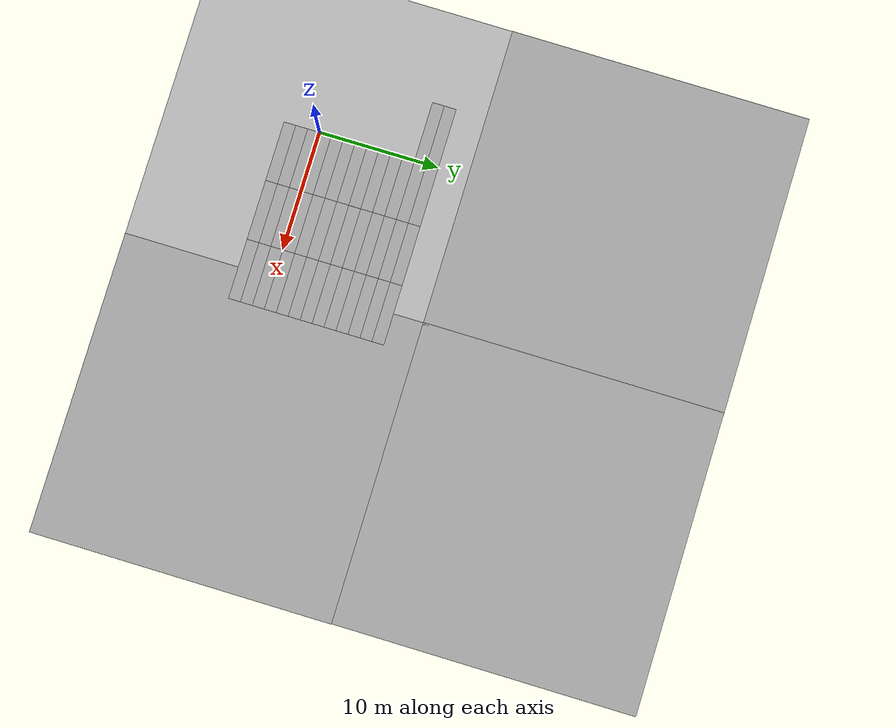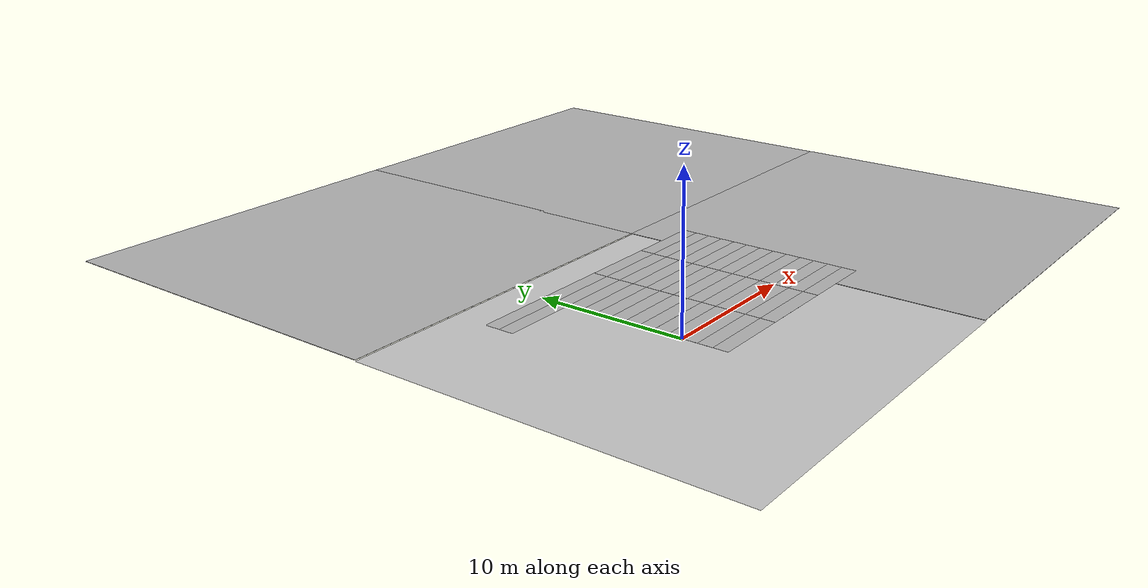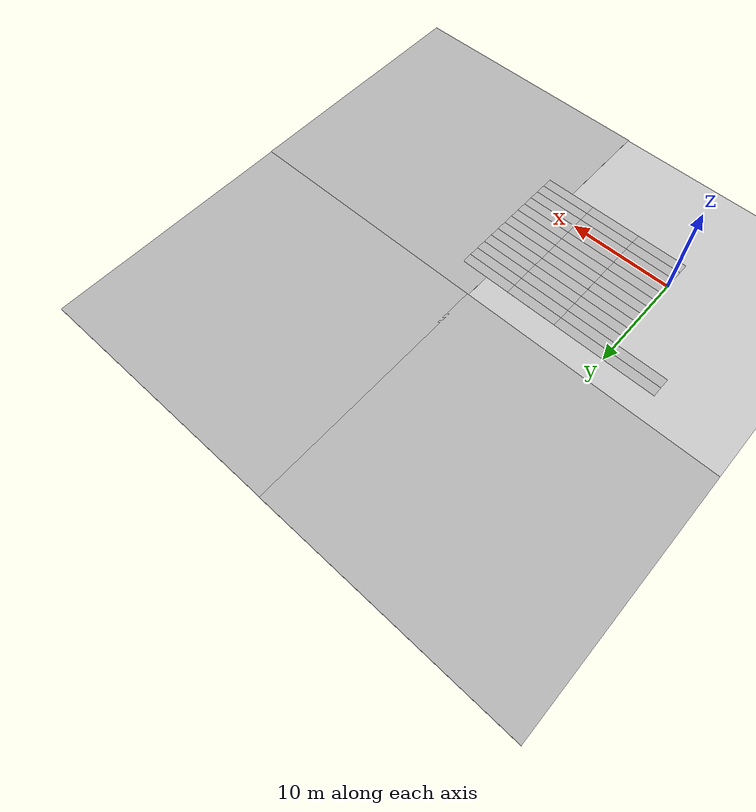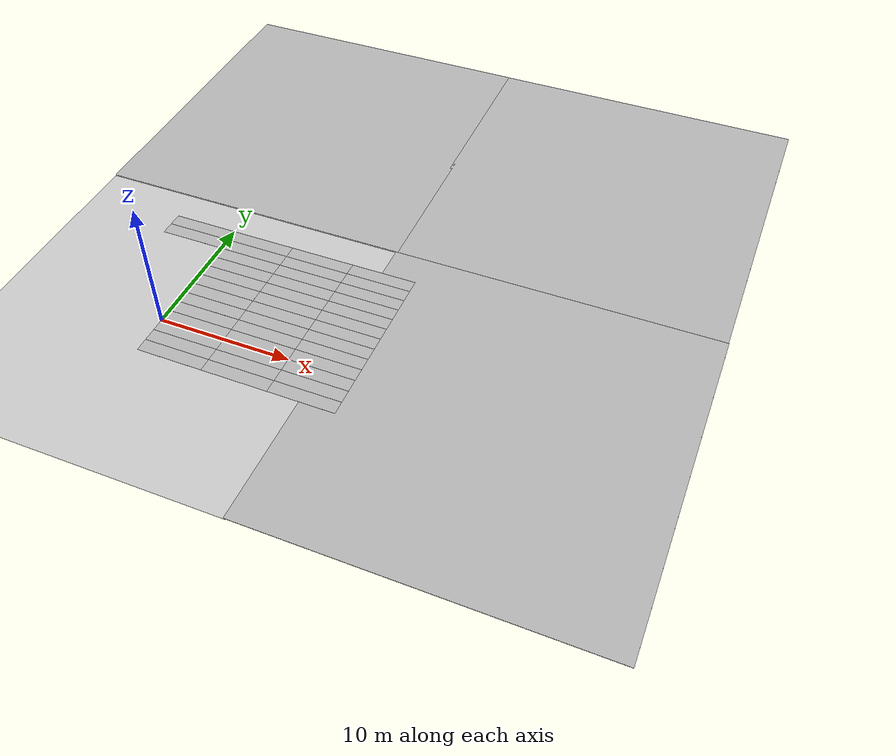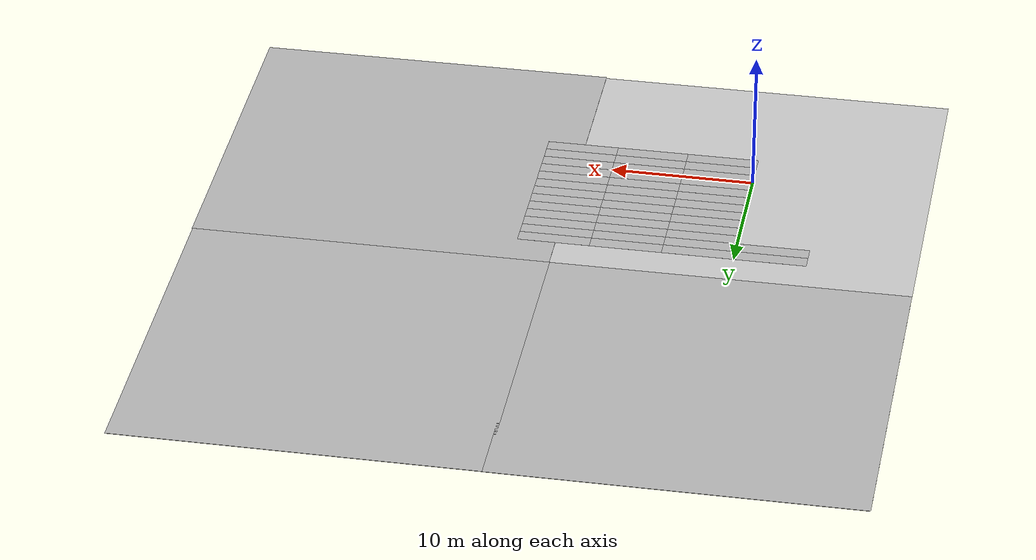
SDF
<sdf version="1.6">
 <world name="default">
  <model name="cmp9767m_ground_3">
   <static>1</static>
   <link name="dirt">
    <collision name="collision">
     <geometry><plane><normal>0 0 1</normal><size>25 25</size></plane></geometry>
     <surface><friction><ode><mu>100</mu><mu2>50</mu2></ode></friction></surface>
    </collision>
    <visual name="visual">
     <cast_shadows>0</cast_shadows>
     <geometry><plane><normal>0 0 1</normal><size>25 25</size></plane></geometry>
     <material>
      <script>
       <uri>model://cmp9767m_ground_3/materials/scripts</uri>
       <uri>model://cmp9767m_ground_3/materials/textures</uri>
       <name>cmp9767m_ground_3/dirt</name>
      </script>
     </material>
    </visual>
   </link>
  </model>
  <model name="cmp9767m_ground_3_0">
   <static>1</static>
   <link name="dirt">
    <collision name="collision">
     <geometry><plane><normal>0 0 1</normal><size>25 25</size></plane></geometry>
     <surface><friction><ode><mu>100</mu><mu2>50</mu2></ode></friction></surface>
    </collision>
    <visual name="visual">
     <cast_shadows>0</cast_shadows>
     <geometry><plane><normal>0 0 1</normal><size>25 25</size></plane></geometry>
     <material>
      <script>
       <uri>model://cmp9767m_ground_3/materials/scripts</uri>
       <uri>model://cmp9767m_ground_3/materials/textures</uri>
       <name>cmp9767m_ground_3/dirt</name>
      </script>
     </material>
    </visual>
   </link>
   <pose>0 25 0 0 -0 0</pose>
  </model>
  <model name="cmp9767m_ground_3_6">
   <static>1</static>
   <link name="dirt">
    <collision name="collision">
     <geometry><plane><normal>0 0 1</normal><size>25 25</size></plane></geometry>
     <surface><friction><ode><mu>100</mu><mu2>50</mu2></ode></friction></surface>
    </collision>
    <visual name="visual">
     <cast_shadows>0</cast_shadows>
     <geometry><plane><normal>0 0 1</normal><size>25 25</size></plane></geometry>
     <material>
      <script>
       <uri>model://cmp9767m_ground_3/materials/scripts</uri>
       <uri>model://cmp9767m_ground_3/materials/textures</uri>
       <name>cmp9767m_ground_3/dirt</name>
      </script>
     </material>
    </visual>
   </link>
   <pose>24.8613 0.003309 0 0 -0 0</pose>
  </model>
  <model name="cmp9767m_ground_3_7">
   <static>1</static>
   <link name="dirt">
    <collision name="collision">
     <geometry><plane><normal>0 0 1</normal><size>25 25</size></plane></geometry>
     <surface><friction><ode><mu>100</mu><mu2>50</mu2></ode></friction></surface>
    </collision>
    <visual name="visual">
     <cast_shadows>0</cast_shadows>
     <geometry><plane><normal>0 0 1</normal><size>25 25</size></plane></geometry>
     <material>
      <script>
       <uri>model://cmp9767m_ground_3/materials/scripts</uri>
       <uri>model://cmp9767m_ground_3/materials/textures</uri>
       <name>cmp9767m_ground_3/dirt</name>
      </script>
     </material>
    </visual>
   </link>
   <pose>24.8226 24.9841 0 0 -0 0</pose>
  </model>
  <model name="crop_rows_0">
   <static>1</static>
   <link name="crop_rows">
    <pose>0 0 0.025 0 -0 0</pose>
    <collision name="collision">
     <geometry><plane><normal>0 0 1</normal><size>5 1</size></plane></geometry>
     <surface><friction><ode><mu>100</mu><mu2>50</mu2></ode></friction></surface>
    </collision>
    <visual name="visual">
     <cast_shadows>0</cast_shadows>
     <geometry><plane><normal>0 0 1</normal><size>5 1</size></plane></geometry>
     <material>
      <script>
       <uri>model://crop_rows/materials/scripts</uri>
       <uri>model://crop_rows/materials/textures</uri>
       <name>crop_rows/real_texture</name>
      </script>
     </material>
    </visual>
   </link>
   <pose>2.5 -0.5 0 0 -0 0</pose>
  </model>
  <model name="crop_rows_2">
   <static>1</static>
   <link name="crop_rows">
    <pose>0 0 0.025 0 -0 0</pose>
    <collision name="collision">
     <geometry><plane><normal>0 0 1</normal><size>5 1</size></plane></geometry>
     <surface><friction><ode><mu>100</mu><mu2>50</mu2></ode></friction></surface>
    </collision>
    <visual name="visual">
     <cast_shadows>0</cast_shadows>
     <geometry><plane><normal>0 0 1</normal><size>5 1</size></plane></geometry>
     <material>
      <script>
       <uri>model://crop_rows/materials/scripts</uri>
       <uri>model://crop_rows/materials/textures</uri>
       <name>crop_rows/real_texture</name>
      </script>
     </material>
    </visual>
   </link>
   <pose>2.5 -1.5 0 0 -0 0</pose>
  </model>
  <model name="crop_rows_4">
   <static>1</static>
   <link name="crop_rows">
    <pose>0 0 0.025 0 -0 0</pose>
    <collision name="collision">
     <geometry><plane><normal>0 0 1</normal><size>5 1</size></plane></geometry>
     <surface><friction><ode><mu>100</mu><mu2>50</mu2></ode></friction></surface>
    </collision>
    <visual name="visual">
     <cast_shadows>0</cast_shadows>
     <geometry><plane><normal>0 0 1</normal><size>5 1</size></plane></geometry>
     <material>
      <script>
       <uri>model://crop_rows/materials/scripts</uri>
       <uri>model://crop_rows/materials/textures</uri>
       <name>crop_rows/real_texture</name>
      </script>
     </material>
    </visual>
   </link>
   <pose>2.5 -2.5 0 0 -0 0</pose>
  </model>
  <model name="crop_rows_11">
   <static>1</static>
   <link name="crop_rows">
    <pose>0 0 0.025 0 -0 0</pose>
    <collision name="collision">
     <geometry><plane><normal>0 0 1</normal><size>5 1</size></plane></geometry>
     <surface><friction><ode><mu>100</mu><mu2>50</mu2></ode></friction></surface>
    </collision>
    <visual name="visual">
     <cast_shadows>0</cast_shadows>
     <geometry><plane><normal>0 0 1</normal><size>5 1</size></plane></geometry>
     <material>
      <script>
       <uri>model://crop_rows/materials/scripts</uri>
       <uri>model://crop_rows/materials/textures</uri>
       <name>crop_rows/real_texture</name>
      </script>
     </material>
    </visual>
   </link>
   <pose>2.5 0.5 0 0 -0 0</pose>
  </model>
  <model name="crop_rows_12">
   <static>1</static>
   <link name="crop_rows">
    <pose>0 0 0.025 0 -0 0</pose>
    <collision name="collision">
     <geometry><plane><normal>0 0 1</normal><size>5 1</size></plane></geometry>
     <surface><friction><ode><mu>100</mu><mu2>50</mu2></ode></friction></surface>
    </collision>
    <visual name="visual">
     <cast_shadows>0</cast_shadows>
     <geometry><plane><normal>0 0 1</normal><size>5 1</size></plane></geometry>
     <material>
      <script>
       <uri>model://crop_rows/materials/scripts</uri>
       <uri>model://crop_rows/materials/textures</uri>
       <name>crop_rows/real_texture</name>
      </script>
     </material>
    </visual>
   </link>
   <pose>2.5 1.5 0 0 -0 0</pose>
  </model>
  <model name="crop_rows_13">
   <static>1</static>
   <link name="crop_rows">
    <pose>0 0 0.025 0 -0 0</pose>
    <collision name="collision">
     <geometry><plane><normal>0 0 1</normal><size>5 1</size></plane></geometry>
     <surface><friction><ode><mu>100</mu><mu2>50</mu2></ode></friction></surface>
    </collision>
    <visual name="visual">
     <cast_shadows>0</cast_shadows>
     <geometry><plane><normal>0 0 1</normal><size>5 1</size></plane></geometry>
     <material>
      <script>
       <uri>model://crop_rows/materials/scripts</uri>
       <uri>model://crop_rows/materials/textures</uri>
       <name>crop_rows/real_texture</name>
      </script>
     </material>
    </visual>
   </link>
   <pose>2.50339 2.50065 0 0 -0 0</pose>
  </model>
  <model name="crop_rows_14">
   <static>1</static>
   <link name="crop_rows">
    <pose>0 0 0.025 0 -0 0</pose>
    <collision name="collision">
     <geometry><plane><normal>0 0 1</normal><size>5 1</size></plane></geometry>
     <surface><friction><ode><mu>100</mu><mu2>50</mu2></ode></friction></surface>
    </collision>
    <visual name="visual">
     <cast_shadows>0</cast_shadows>
     <geometry><plane><normal>0 0 1</normal><size>5 1</size></plane></geometry>
     <material>
      <script>
       <uri>model://crop_rows/materials/scripts</uri>
       <uri>model://crop_rows/materials/textures</uri>
       <name>crop_rows/real_texture</name>
      </script>
     </material>
    </visual>
   </link>
   <pose>2.5 3.5 0 0 -0 0</pose>
  </model>
  <model name="crop_rows_22">
   <static>1</static>
   <link name="crop_rows">
    <pose>0 0 0.025 0 -0 0</pose>
    <collision name="collision">
     <geometry><plane><normal>0 0 1</normal><size>5 1</size></plane></geometry>
     <surface><friction><ode><mu>100</mu><mu2>50</mu2></ode></friction></surface>
    </collision>
    <visual name="visual">
     <cast_shadows>0</cast_shadows>
     <geometry><plane><normal>0 0 1</normal><size>5 1</size></plane></geometry>
     <material>
      <script>
       <uri>model://crop_rows/materials/scripts</uri>
       <uri>model://crop_rows/materials/textures</uri>
       <name>crop_rows/real_texture</name>
      </script>
     </material>
    </visual>
   </link>
   <pose>7.5 -2.5 0 0 -0 0</pose>
  </model>
  <model name="crop_rows_23">
   <static>1</static>
   <link name="crop_rows">
    <pose>0 0 0.025 0 -0 0</pose>
    <collision name="collision">
     <geometry><plane><normal>0 0 1</normal><size>5 1</size></plane></geometry>
     <surface><friction><ode><mu>100</mu><mu2>50</mu2></ode></friction></surface>
    </collision>
    <visual name="visual">
     <cast_shadows>0</cast_shadows>
     <geometry><plane><normal>0 0 1</normal><size>5 1</size></plane></geometry>
     <material>
      <script>
       <uri>model://crop_rows/materials/scripts</uri>
       <uri>model://crop_rows/materials/textures</uri>
       <name>crop_rows/real_texture</name>
      </script>
     </material>
    </visual>
   </link>
   <pose>7.5 -1.5 0 0 -0 0</pose>
  </model>
  <model name="crop_rows_24">
   <static>1</static>
   <link name="crop_rows">
    <pose>0 0 0.025 0 -0 0</pose>
    <collision name="collision">
     <geometry><plane><normal>0 0 1</normal><size>5 1</size></plane></geometry>
     <surface><friction><ode><mu>100</mu><mu2>50</mu2></ode></friction></surface>
    </collision>
    <visual name="visual">
     <cast_shadows>0</cast_shadows>
     <geometry><plane><normal>0 0 1</normal><size>5 1</size></plane></geometry>
     <material>
      <script>
       <uri>model://crop_rows/materials/scripts</uri>
       <uri>model://crop_rows/materials/textures</uri>
       <name>crop_rows/real_texture</name>
      </script>
     </material>
    </visual>
   </link>
   <pose>7.5 -0.5 0 0 -0 0</pose>
  </model>
  <model name="crop_rows_25">
   <static>1</static>
   <link name="crop_rows">
    <pose>0 0 0.025 0 -0 0</pose>
    <collision name="collision">
     <geometry><plane><normal>0 0 1</normal><size>5 1</size></plane></geometry>
     <surface><friction><ode><mu>100</mu><mu2>50</mu2></ode></friction></surface>
    </collision>
    <visual name="visual">
     <cast_shadows>0</cast_shadows>
     <geometry><plane><normal>0 0 1</normal><size>5 1</size></plane></geometry>
     <material>
      <script>
       <uri>model://crop_rows/materials/scripts</uri>
       <uri>model://crop_rows/materials/textures</uri>
       <name>crop_rows/real_texture</name>
      </script>
     </material>
    </visual>
   </link>
   <pose>7.5 0.5 0 0 -0 0</pose>
  </model>
  <model name="crop_rows_26">
   <static>1</static>
   <link name="crop_rows">
    <pose>0 0 0.025 0 -0 0</pose>
    <collision name="collision">
     <geometry><plane><normal>0 0 1</normal><size>5 1</size></plane></geometry>
     <surface><friction><ode><mu>100</mu><mu2>50</mu2></ode></friction></surface>
    </collision>
    <visual name="visual">
     <cast_shadows>0</cast_shadows>
     <geometry><plane><normal>0 0 1</normal><size>5 1</size></plane></geometry>
     <material>
      <script>
       <uri>model://crop_rows/materials/scripts</uri>
       <uri>model://crop_rows/materials/textures</uri>
       <name>crop_rows/real_texture</name>
      </script>
     </material>
    </visual>
   </link>
   <pose>7.5 1.5 0 0 -0 0</pose>
  </model>
  <model name="crop_rows_27">
   <static>1</static>
   <link name="crop_rows">
    <pose>0 0 0.025 0 -0 0</pose>
    <collision name="collision">
     <geometry><plane><normal>0 0 1</normal><size>5 1</size></plane></geometry>
     <surface><friction><ode><mu>100</mu><mu2>50</mu2></ode></friction></surface>
    </collision>
    <visual name="visual">
     <cast_shadows>0</cast_shadows>
     <geometry><plane><normal>0 0 1</normal><size>5 1</size></plane></geometry>
     <material>
      <script>
       <uri>model://crop_rows/materials/scripts</uri>
       <uri>model://crop_rows/materials/textures</uri>
       <name>crop_rows/real_texture</name>
      </script>
     </material>
    </visual>
   </link>
   <pose>7.5 2.5 0 0 -0 0</pose>
  </model>
  <model name="crop_rows_28">
   <static>1</static>
   <link name="crop_rows">
    <pose>0 0 0.025 0 -0 0</pose>
    <collision name="collision">
     <geometry><plane><normal>0 0 1</normal><size>5 1</size></plane></geometry>
     <surface><friction><ode><mu>100</mu><mu2>50</mu2></ode></friction></surface>
    </collision>
    <visual name="visual">
     <cast_shadows>0</cast_shadows>
     <geometry><plane><normal>0 0 1</normal><size>5 1</size></plane></geometry>
     <material>
      <script>
       <uri>model://crop_rows/materials/scripts</uri>
       <uri>model://crop_rows/materials/textures</uri>
       <name>crop_rows/real_texture</name>
      </script>
     </material>
    </visual>
   </link>
   <pose>7.5 3.5 0 0 -0 0</pose>
  </model>
  <model name="crop_rows_30">
   <static>1</static>
   <link name="crop_rows">
    <pose>0 0 0.025 0 -0 0</pose>
    <collision name="collision">
     <geometry><plane><normal>0 0 1</normal><size>5 1</size></plane></geometry>
     <surface><friction><ode><mu>100</mu><mu2>50</mu2></ode></friction></surface>
    </collision>
    <visual name="visual">
     <cast_shadows>0</cast_shadows>
     <geometry><plane><normal>0 0 1</normal><size>5 1</size></plane></geometry>
     <material>
      <script>
       <uri>model://crop_rows/materials/scripts</uri>
       <uri>model://crop_rows/materials/textures</uri>
       <name>crop_rows/real_texture</name>
      </script>
     </material>
    </visual>
   </link>
   <pose>2.5 4.5 0 0 -0 0</pose>
  </model>
  <model name="crop_rows_31">
   <static>1</static>
   <link name="crop_rows">
    <pose>0 0 0.025 0 -0 0</pose>
    <collision name="collision">
     <geometry><plane><normal>0 0 1</normal><size>5 1</size></plane></geometry>
     <surface><friction><ode><mu>100</mu><mu2>50</mu2></ode></friction></surface>
    </collision>
    <visual name="visual">
     <cast_shadows>0</cast_shadows>
     <geometry><plane><normal>0 0 1</normal><size>5 1</size></plane></geometry>
     <material>
      <script>
       <uri>model://crop_rows/materials/scripts</uri>
       <uri>model://crop_rows/materials/textures</uri>
       <name>crop_rows/real_texture</name>
      </script>
     </material>
    </visual>
   </link>
   <pose>7.50726 4.5 0 0 -0 0</pose>
  </model>
  <model name="crop_rows_33">
   <static>1</static>
   <link name="crop_rows">
    <pose>0 0 0.025 0 -0 0</pose>
    <collision name="collision">
     <geometry><plane><normal>0 0 1</normal><size>5 1</size></plane></geometry>
     <surface><friction><ode><mu>100</mu><mu2>50</mu2></ode></friction></surface>
    </collision>
    <visual name="visual">
     <cast_shadows>0</cast_shadows>
     <geometry><plane><normal>0 0 1</normal><size>5 1</size></plane></geometry>
     <material>
      <script>
       <uri>model://crop_rows/materials/scripts</uri>
       <uri>model://crop_rows/materials/textures</uri>
       <name>crop_rows/real_texture</name>
      </script>
     </material>
    </visual>
   </link>
   <pose>2.5 5.5 0 0 -0 0</pose>
  </model>
  <model name="crop_rows_34">
   <static>1</static>
   <link name="crop_rows">
    <pose>0 0 0.025 0 -0 0</pose>
    <collision name="collision">
     <geometry><plane><normal>0 0 1</normal><size>5 1</size></plane></geometry>
     <surface><friction><ode><mu>100</mu><mu2>50</mu2></ode></friction></surface>
    </collision>
    <visual name="visual">
     <cast_shadows>0</cast_shadows>
     <geometry><plane><normal>0 0 1</normal><size>5 1</size></plane></geometry>
     <material>
      <script>
       <uri>model://crop_rows/materials/scripts</uri>
       <uri>model://crop_rows/materials/textures</uri>
       <name>crop_rows/real_texture</name>
      </script>
     </material>
    </visual>
   </link>
   <pose>7.5 5.5 0 0 -0 0</pose>
  </model>
  <model name="crop_rows_36">
   <static>1</static>
   <link name="crop_rows">
    <pose>0 0 0.025 0 -0 0</pose>
    <collision name="collision">
     <geometry><plane><normal>0 0 1</normal><size>5 1</size></plane></geometry>
     <surface><friction><ode><mu>100</mu><mu2>50</mu2></ode></friction></surface>
    </collision>
    <visual name="visual">
     <cast_shadows>0</cast_shadows>
     <geometry><plane><normal>0 0 1</normal><size>5 1</size></plane></geometry>
     <material>
      <script>
       <uri>model://crop_rows/materials/scripts</uri>
       <uri>model://crop_rows/materials/textures</uri>
       <name>crop_rows/real_texture</name>
      </script>
     </material>
    </visual>
   </link>
   <pose>2.5 6.5 0 0 -0 0</pose>
  </model>
  <model name="crop_rows_37">
   <static>1</static>
   <link name="crop_rows">
    <pose>0 0 0.025 0 -0 0</pose>
    <collision name="collision">
     <geometry><plane><normal>0 0 1</normal><size>5 1</size></plane></geometry>
     <surface><friction><ode><mu>100</mu><mu2>50</mu2></ode></friction></surface>
    </collision>
    <visual name="visual">
     <cast_shadows>0</cast_shadows>
     <geometry><plane><normal>0 0 1</normal><size>5 1</size></plane></geometry>
     <material>
      <script>
       <uri>model://crop_rows/materials/scripts</uri>
       <uri>model://crop_rows/materials/textures</uri>
       <name>crop_rows/real_texture</name>
      </script>
     </material>
    </visual>
   </link>
   <pose>7.5 6.5 0 0 -0 0</pose>
  </model>
  <model name="crop_rows_42">
   <static>1</static>
   <link name="crop_rows">
    <pose>0 0 0.025 0 -0 0</pose>
    <collision name="collision">
     <geometry><plane><normal>0 0 1</normal><size>5 1</size></plane></geometry>
     <surface><friction><ode><mu>100</mu><mu2>50</mu2></ode></friction></surface>
    </collision>
    <visual name="visual">
     <cast_shadows>0</cast_shadows>
     <geometry><plane><normal>0 0 1</normal><size>5 1</size></plane></geometry>
     <material>
      <script>
       <uri>model://crop_rows/materials/scripts</uri>
       <uri>model://crop_rows/materials/textures</uri>
       <name>crop_rows/real_texture</name>
      </script>
     </material>
    </visual>
   </link>
   <pose>2.5 7.5 0 0 -0 0</pose>
  </model>
  <model name="crop_rows_43">
   <static>1</static>
   <link name="crop_rows">
    <pose>0 0 0.025 0 -0 0</pose>
    <collision name="collision">
     <geometry><plane><normal>0 0 1</normal><size>5 1</size></plane></geometry>
     <surface><friction><ode><mu>100</mu><mu2>50</mu2></ode></friction></surface>
    </collision>
    <visual name="visual">
     <cast_shadows>0</cast_shadows>
     <geometry><plane><normal>0 0 1</normal><size>5 1</size></plane></geometry>
     <material>
      <script>
       <uri>model://crop_rows/materials/scripts</uri>
       <uri>model://crop_rows/materials/textures</uri>
       <name>crop_rows/real_texture</name>
      </script>
     </material>
    </visual>
   </link>
   <pose>7.5 7.5 0 0 -0 0</pose>
  </model>
  <model name="crop_rows_52">
   <static>1</static>
   <link name="crop_rows">
    <pose>0 0 0.025 0 -0 0</pose>
    <collision name="collision">
     <geometry><plane><normal>0 0 1</normal><size>5 1</size></plane></geometry>
     <surface><friction><ode><mu>100</mu><mu2>50</mu2></ode></friction></surface>
    </collision>
    <visual name="visual">
     <cast_shadows>0</cast_shadows>
     <geometry><plane><normal>0 0 1</normal><size>5 1</size></plane></geometry>
     <material>
      <script>
       <uri>model://crop_rows/materials/scripts</uri>
       <uri>model://crop_rows/materials/textures</uri>
       <name>crop_rows/real_texture</name>
      </script>
     </material>
    </visual>
   </link>
   <pose>12.5 -2.5 0 0 -0 0</pose>
  </model>
  <model name="crop_rows_53">
   <static>1</static>
   <link name="crop_rows">
    <pose>0 0 0.025 0 -0 0</pose>
    <collision name="collision">
     <geometry><plane><normal>0 0 1</normal><size>5 1</size></plane></geometry>
     <surface><friction><ode><mu>100</mu><mu2>50</mu2></ode></friction></surface>
    </collision>
    <visual name="visual">
     <cast_shadows>0</cast_shadows>
     <geometry><plane><normal>0 0 1</normal><size>5 1</size></plane></geometry>
     <material>
      <script>
       <uri>model://crop_rows/materials/scripts</uri>
       <uri>model://crop_rows/materials/textures</uri>
       <name>crop_rows/real_texture</name>
      </script>
     </material>
    </visual>
   </link>
   <pose>12.5 -1.5 0 0 -0 0</pose>
  </model>
  <model name="crop_rows_54">
   <static>1</static>
   <link name="crop_rows">
    <pose>0 0 0.025 0 -0 0</pose>
    <collision name="collision">
     <geometry><plane><normal>0 0 1</normal><size>5 1</size></plane></geometry>
     <surface><friction><ode><mu>100</mu><mu2>50</mu2></ode></friction></surface>
    </collision>
    <visual name="visual">
     <cast_shadows>0</cast_shadows>
     <geometry><plane><normal>0 0 1</normal><size>5 1</size></plane></geometry>
     <material>
      <script>
       <uri>model://crop_rows/materials/scripts</uri>
       <uri>model://crop_rows/materials/textures</uri>
       <name>crop_rows/real_texture</name>
      </script>
     </material>
    </visual>
   </link>
   <pose>12.5 -0.5 0 0 -0 0</pose>
  </model>
  <model name="crop_rows_55">
   <static>1</static>
   <link name="crop_rows">
    <pose>0 0 0.025 0 -0 0</pose>
    <collision name="collision">
     <geometry><plane><normal>0 0 1</normal><size>5 1</size></plane></geometry>
     <surface><friction><ode><mu>100</mu><mu2>50</mu2></ode></friction></surface>
    </collision>
    <visual name="visual">
     <cast_shadows>0</cast_shadows>
     <geometry><plane><normal>0 0 1</normal><size>5 1</size></plane></geometry>
     <material>
      <script>
       <uri>model://crop_rows/materials/scripts</uri>
       <uri>model://crop_rows/materials/textures</uri>
       <name>crop_rows/real_texture</name>
      </script>
     </material>
    </visual>
   </link>
   <pose>12.5 0.5 0 0 -0 0</pose>
  </model>
  <model name="crop_rows_56">
   <static>1</static>
   <link name="crop_rows">
    <pose>0 0 0.025 0 -0 0</pose>
    <collision name="collision">
     <geometry><plane><normal>0 0 1</normal><size>5 1</size></plane></geometry>
     <surface><friction><ode><mu>100</mu><mu2>50</mu2></ode></friction></surface>
    </collision>
    <visual name="visual">
     <cast_shadows>0</cast_shadows>
     <geometry><plane><normal>0 0 1</normal><size>5 1</size></plane></geometry>
     <material>
      <script>
       <uri>model://crop_rows/materials/scripts</uri>
       <uri>model://crop_rows/materials/textures</uri>
       <name>crop_rows/real_texture</name>
      </script>
     </material>
    </visual>
   </link>
   <pose>12.5 1.5 0 0 -0 0</pose>
  </model>
  <model name="crop_rows_57">
   <static>1</static>
   <link name="crop_rows">
    <pose>0 0 0.025 0 -0 0</pose>
    <collision name="collision">
     <geometry><plane><normal>0 0 1</normal><size>5 1</size></plane></geometry>
     <surface><friction><ode><mu>100</mu><mu2>50</mu2></ode></friction></surface>
    </collision>
    <visual name="visual">
     <cast_shadows>0</cast_shadows>
     <geometry><plane><normal>0 0 1</normal><size>5 1</size></plane></geometry>
     <material>
      <script>
       <uri>model://crop_rows/materials/scripts</uri>
       <uri>model://crop_rows/materials/textures</uri>
       <name>crop_rows/real_texture</name>
      </script>
     </material>
    </visual>
   </link>
   <pose>12.5 2.5 0 0 -0 0</pose>
  </model>
  <model name="crop_rows_58">
   <static>1</static>
   <link name="crop_rows">
    <pose>0 0 0.025 0 -0 0</pose>
    <collision name="collision">
     <geometry><plane><normal>0 0 1</normal><size>5 1</size></plane></geometry>
     <surface><friction><ode><mu>100</mu><mu2>50</mu2></ode></friction></surface>
    </collision>
    <visual name="visual">
     <cast_shadows>0</cast_shadows>
     <geometry><plane><normal>0 0 1</normal><size>5 1</size></plane></geometry>
     <material>
      <script>
       <uri>model://crop_rows/materials/scripts</uri>
       <uri>model://crop_rows/materials/textures</uri>
       <name>crop_rows/real_texture</name>
      </script>
     </material>
    </visual>
   </link>
   <pose>12.5 3.5 0 0 -0 0</pose>
  </model>
  <model name="crop_rows_59">
   <static>1</static>
   <link name="crop_rows">
    <pose>0 0 0.025 0 -0 0</pose>
    <collision name="collision">
     <geometry><plane><normal>0 0 1</normal><size>5 1</size></plane></geometry>
     <surface><friction><ode><mu>100</mu><mu2>50</mu2></ode></friction></surface>
    </collision>
    <visual name="visual">
     <cast_shadows>0</cast_shadows>
     <geometry><plane><normal>0 0 1</normal><size>5 1</size></plane></geometry>
     <material>
      <script>
       <uri>model://crop_rows/materials/scripts</uri>
       <uri>model://crop_rows/materials/textures</uri>
       <name>crop_rows/real_texture</name>
      </script>
     </material>
    </visual>
   </link>
   <pose>12.5 4.5 0 0 -0 0</pose>
  </model>
  <model name="crop_rows_60">
   <static>1</static>
   <link name="crop_rows">
    <pose>0 0 0.025 0 -0 0</pose>
    <collision name="collision">
     <geometry><plane><normal>0 0 1</normal><size>5 1</size></plane></geometry>
     <surface><friction><ode><mu>100</mu><mu2>50</mu2></ode></friction></surface>
    </collision>
    <visual name="visual">
     <cast_shadows>0</cast_shadows>
     <geometry><plane><normal>0 0 1</normal><size>5 1</size></plane></geometry>
     <material>
      <script>
       <uri>model://crop_rows/materials/scripts</uri>
       <uri>model://crop_rows/materials/textures</uri>
       <name>crop_rows/real_texture</name>
      </script>
     </material>
    </visual>
   </link>
   <pose>12.5 5.5 0 0 -0 0</pose>
  </model>
  <model name="crop_rows_61">
   <static>1</static>
   <link name="crop_rows">
    <pose>0 0 0.025 0 -0 0</pose>
    <collision name="collision">
     <geometry><plane><normal>0 0 1</normal><size>5 1</size></plane></geometry>
     <surface><friction><ode><mu>100</mu><mu2>50</mu2></ode></friction></surface>
    </collision>
    <visual name="visual">
     <cast_shadows>0</cast_shadows>
     <geometry><plane><normal>0 0 1</normal><size>5 1</size></plane></geometry>
     <material>
      <script>
       <uri>model://crop_rows/materials/scripts</uri>
       <uri>model://crop_rows/materials/textures</uri>
       <name>crop_rows/real_texture</name>
      </script>
     </material>
    </visual>
   </link>
   <pose>12.5 6.5 0 0 -0 0</pose>
  </model>
  <model name="crop_rows_62">
   <static>1</static>
   <link name="crop_rows">
    <pose>0 0 0.025 0 -0 0</pose>
    <collision name="collision">
     <geometry><plane><normal>0 0 1</normal><size>5 1</size></plane></geometry>
     <surface><friction><ode><mu>100</mu><mu2>50</mu2></ode></friction></surface>
    </collision>
    <visual name="visual">
     <cast_shadows>0</cast_shadows>
     <geometry><plane><normal>0 0 1</normal><size>5 1</size></plane></geometry>
     <material>
      <script>
       <uri>model://crop_rows/materials/scripts</uri>
       <uri>model://crop_rows/materials/textures</uri>
       <name>crop_rows/real_texture</name>
      </script>
     </material>
    </visual>
   </link>
   <pose>12.5 7.5 0 0 -0 0</pose>
  </model>
  <model name="crop_rows_89">
   <static>1</static>
   <link name="crop_rows">
    <pose>0 0 0.025 0 -0 0</pose>
    <collision name="collision">
     <geometry><plane><normal>0 0 1</normal><size>5 1</size></plane></geometry>
     <surface><friction><ode><mu>100</mu><mu2>50</mu2></ode></friction></surface>
    </collision>
    <visual name="visual">
     <cast_shadows>0</cast_shadows>
     <geometry><plane><normal>0 0 1</normal><size>5 1</size></plane></geometry>
     <material>
      <script>
       <uri>model://crop_rows/materials/scripts</uri>
       <uri>model://crop_rows/materials/textures</uri>
       <name>crop_rows/real_texture</name>
      </script>
     </material>
    </visual>
   </link>
   <pose>12.5 8.5 0 0 -0 0</pose>
  </model>
  <model name="crop_rows_90">
   <static>1</static>
   <link name="crop_rows">
    <pose>0 0 0.025 0 -0 0</pose>
    <collision name="collision">
     <geometry><plane><normal>0 0 1</normal><size>5 1</size></plane></geometry>
     <surface><friction><ode><mu>100</mu><mu2>50</mu2></ode></friction></surface>
    </collision>
    <visual name="visual">
     <cast_shadows>0</cast_shadows>
     <geometry><plane><normal>0 0 1</normal><size>5 1</size></plane></geometry>
     <material>
      <script>
       <uri>model://crop_rows/materials/scripts</uri>
       <uri>model://crop_rows/materials/textures</uri>
       <name>crop_rows/real_texture</name>
      </script>
     </material>
    </visual>
   </link>
   <pose>7.5 8.5 0 0 -0 0</pose>
  </model>
  <model name="crop_rows_91">
   <static>1</static>
   <link name="crop_rows">
    <pose>0 0 0.025 0 -0 0</pose>
    <collision name="collision">
     <geometry><plane><normal>0 0 1</normal><size>5 1</size></plane></geometry>
     <surface><friction><ode><mu>100</mu><mu2>50</mu2></ode></friction></surface>
    </collision>
    <visual name="visual">
     <cast_shadows>0</cast_shadows>
     <geometry><plane><normal>0 0 1</normal><size>5 1</size></plane></geometry>
     <material>
      <script>
       <uri>model://crop_rows/materials/scripts</uri>
       <uri>model://crop_rows/materials/textures</uri>
       <name>crop_rows/real_texture</name>
      </script>
     </material>
    </visual>
   </link>
   <pose>2.5 8.5 0 0 -0 0</pose>
  </model>
  <model name="crop_rows_92">
   <static>1</static>
   <link name="crop_rows">
    <pose>0 0 0.025 0 -0 0</pose>
    <collision name="collision">
     <geometry><plane><normal>0 0 1</normal><size>5 1</size></plane></geometry>
     <surface><friction><ode><mu>100</mu><mu2>50</mu2></ode></friction></surface>
    </collision>
    <visual name="visual">
     <cast_shadows>0</cast_shadows>
     <geometry><plane><normal>0 0 1</normal><size>5 1</size></plane></geometry>
     <material>
      <script>
       <uri>model://crop_rows/materials/scripts</uri>
       <uri>model://crop_rows/materials/textures</uri>
       <name>crop_rows/real_texture</name>
      </script>
     </material>
    </visual>
   </link>
   <pose>-2.5 8.5 0 0 -0 0</pose>
  </model>
  <model name="crop_rows_95">
   <static>1</static>
   <link name="crop_rows">
    <pose>0 0 0.025 0 -0 0</pose>
    <collision name="collision">
     <geometry><plane><normal>0 0 1</normal><size>5 1</size></plane></geometry>
     <surface><friction><ode><mu>100</mu><mu2>50</mu2></ode></friction></surface>
    </collision>
    <visual name="visual">
     <cast_shadows>0</cast_shadows>
     <geometry><plane><normal>0 0 1</normal><size>5 1</size></plane></geometry>
     <material>
      <script>
       <uri>model://crop_rows/materials/scripts</uri>
       <uri>model://crop_rows/materials/textures</uri>
       <name>crop_rows/real_texture</name>
      </script>
     </material>
    </visual>
   </link>
   <pose>-2.5 9.5 0 0 -0 0</pose>
  </model>
  <model name="crop_rows_96">
   <static>1</static>
   <link name="crop_rows">
    <pose>0 0 0.025 0 -0 0</pose>
    <collision name="collision">
     <geometry><plane><normal>0 0 1</normal><size>5 1</size></plane></geometry>
     <surface><friction><ode><mu>100</mu><mu2>50</mu2></ode></friction></surface>
    </collision>
    <visual name="visual">
     <cast_shadows>0</cast_shadows>
     <geometry><plane><normal>0 0 1</normal><size>5 1</size></plane></geometry>
     <material>
      <script>
       <uri>model://crop_rows/materials/scripts</uri>
       <uri>model://crop_rows/materials/textures</uri>
       <name>crop_rows/real_texture</name>
      </script>
     </material>
    </visual>
   </link>
   <pose>2.5 9.5 0 0 -0 0</pose>
  </model>
  <model name="crop_rows_97">
   <static>1</static>
   <link name="crop_rows">
    <pose>0 0 0.025 0 -0 0</pose>
    <collision name="collision">
     <geometry><plane><normal>0 0 1</normal><size>5 1</size></plane></geometry>
     <surface><friction><ode><mu>100</mu><mu2>50</mu2></ode></friction></surface>
    </collision>
    <visual name="visual">
     <cast_shadows>0</cast_shadows>
     <geometry><plane><normal>0 0 1</normal><size>5 1</size></plane></geometry>
     <material>
      <script>
       <uri>model://crop_rows/materials/scripts</uri>
       <uri>model://crop_rows/materials/textures</uri>
       <name>crop_rows/real_texture</name>
      </script>
     </material>
    </visual>
   </link>
   <pose>7.5 9.5 0 0 -0 0</pose>
  </model>
  <model name="crop_rows_98">
   <static>1</static>
   <link name="crop_rows">
    <pose>0 0 0.025 0 -0 0</pose>
    <collision name="collision">
     <geometry><plane><normal>0 0 1</normal><size>5 1</size></plane></geometry>
     <surface><friction><ode><mu>100</mu><mu2>50</mu2></ode></friction></surface>
    </collision>
    <visual name="visual">
     <cast_shadows>0</cast_shadows>
     <geometry><plane><normal>0 0 1</normal><size>5 1</size></plane></geometry>
     <material>
      <script>
       <uri>model://crop_rows/materials/scripts</uri>
       <uri>model://crop_rows/materials/textures</uri>
       <name>crop_rows/real_texture</name>
      </script>
     </material>
    </visual>
   </link>
   <pose>12.5 9.5 0 0 -0 0</pose>
  </model>
 </world>
</sdf>
